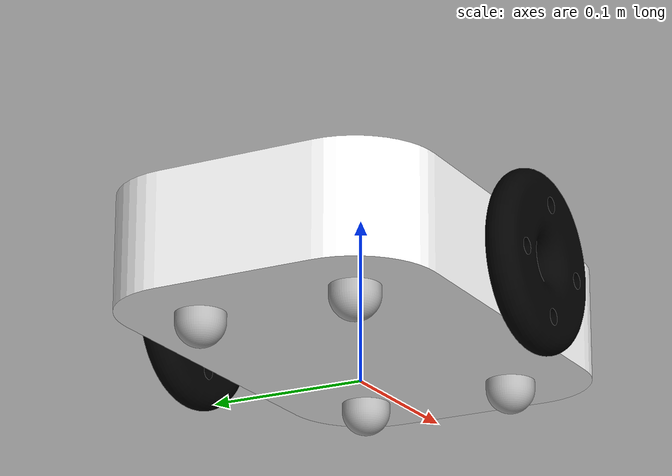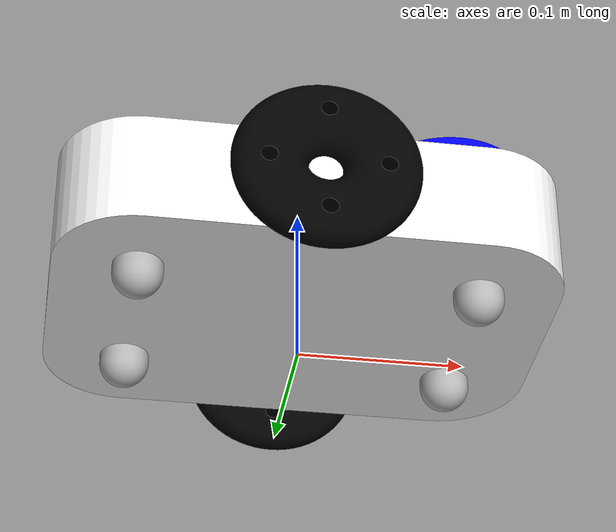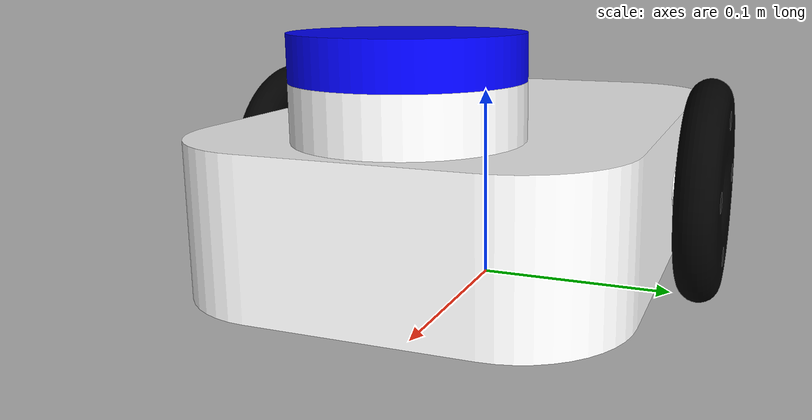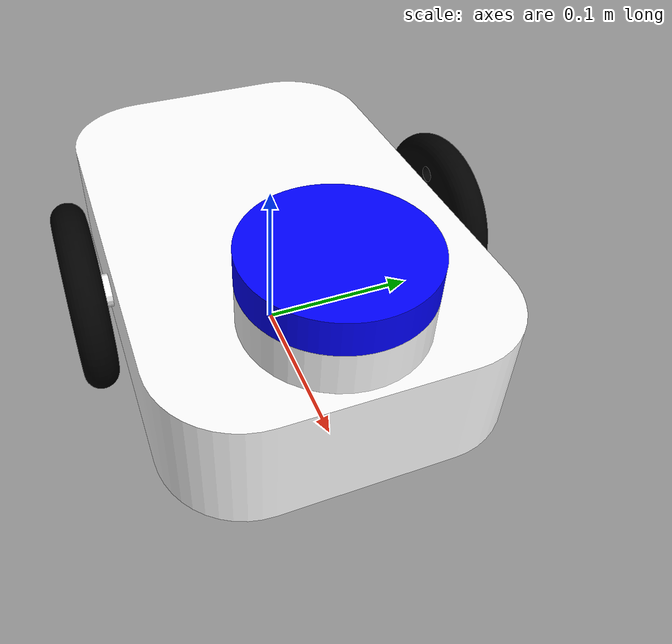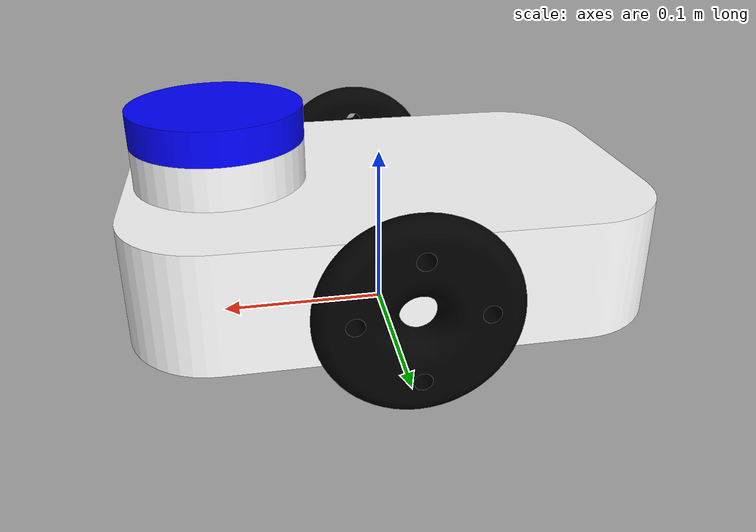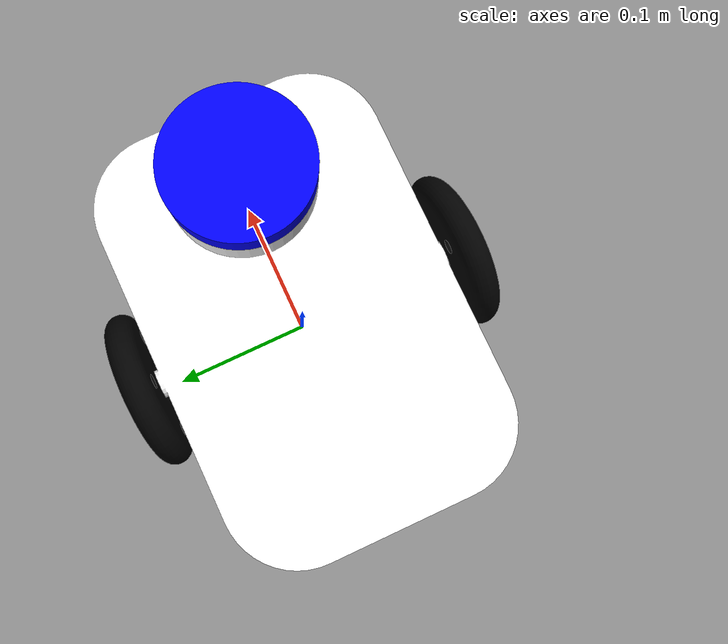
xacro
<?xml version="1.0" ?>
<robot name="wmr" xmlns:xacro="http://www.ros.org/wiki/xacro">

<xacro:include filename="$(find wmr_description)/urdf/materials.xacro" />
<xacro:include filename="$(find wmr_description)/urdf/wmr.trans" />
<xacro:include filename="$(find wmr_description)/gazebo/wmr_detailed_material.gazebo" />
<xacro:include filename="$(find wmr_description)/gazebo/wmr_detailed_physics.gazebo" />
<xacro:include filename="$(find wmr_description)/gazebo/wmr_detailed_plugins.gazebo" />

<link name="base_link">
  <inertial>
    <origin xyz="0.004386500845627422 -3.4220383966176395e-17 0.057193250424025434" rpy="0 0 0"/>
    <mass value="1.0518647915777475"/>
    <inertia ixx="0.017915" iyy="0.038599" izz="0.051557" ixy="-0.0" iyz="-0.0" ixz="-0.001004"/>
  </inertial>
  <visual>
    <origin xyz="0 0 0" rpy="0 0 0"/>
    <geometry>
      <mesh filename="package://wmr_description/meshes/base_link.stl" scale="0.001 0.001 0.001"/>
    </geometry>
    <material name="white"/>
  </visual>
  <collision>
    <origin xyz="0 0 0" rpy="0 0 0"/>
    <geometry>
      <mesh filename="package://wmr_description/meshes/base_link.stl" scale="0.001 0.001 0.001"/>
    </geometry>
  </collision>
</link>

<link name="Lidar_1">
  <inertial>
    <origin xyz="-1.3877787807814457e-17 -1.447505775030507e-17 0.009999999999999995" rpy="0 0 0"/>
    <mass value="0.42411500823462206"/>
    <inertia ixx="0.000279" iyy="0.000279" izz="0.00053" ixy="-0.0" iyz="-0.0" ixz="0.0"/>
  </inertial>
  <visual>
    <origin xyz="-0.095 -0.0 -0.115" rpy="0 0 0"/>
    <geometry>
      <mesh filename="package://wmr_description/meshes/Lidar_1.stl" scale="0.001 0.001 0.001"/>
    </geometry>
    <material name="blue"/>
  </visual>
  <collision>
    <origin xyz="-0.095 -0.0 -0.115" rpy="0 0 0"/>
    <geometry>
      <mesh filename="package://wmr_description/meshes/Lidar_1.stl" scale="0.001 0.001 0.001"/>
    </geometry>
  </collision>
</link>

<link name="caster_left_back_1">
  <inertial>
    <origin xyz="1.5265566588595902e-16 -8.326672684688674e-17 -0.007916666666666667" rpy="0 0 0"/>
    <mass value="0.028627763055837"/>
    <inertia ixx="2e-06" iyy="2e-06" izz="3e-06" ixy="-0.0" iyz="0.0" ixz="-0.0"/>
  </inertial>
  <visual>
    <origin xyz="0.1 -0.05 -0.02" rpy="0 0 0"/>
    <geometry>
      <mesh filename="package://wmr_description/meshes/caster_left_back_1.stl" scale="0.001 0.001 0.001"/>
    </geometry>
    <material name="silver"/>
  </visual>
  <collision>
    <origin xyz="0.1 -0.05 -0.02" rpy="0 0 0"/>
    <geometry>
      <mesh filename="package://wmr_description/meshes/caster_left_back_1.stl" scale="0.001 0.001 0.001"/>
    </geometry>
  </collision>
</link>

<link name="caster_right_back_1">
  <inertial>
    <origin xyz="4.163336342344337e-17 -4.163336342344337e-17 -0.007916666666666667" rpy="0 0 0"/>
    <mass value="0.028627763055836974"/>
    <inertia ixx="2e-06" iyy="2e-06" izz="3e-06" ixy="0.0" iyz="0.0" ixz="0.0"/>
  </inertial>
  <visual>
    <origin xyz="0.1 0.05 -0.02" rpy="0 0 0"/>
    <geometry>
      <mesh filename="package://wmr_description/meshes/caster_right_back_1.stl" scale="0.001 0.001 0.001"/>
    </geometry>
    <material name="silver"/>
  </visual>
  <collision>
    <origin xyz="0.1 0.05 -0.02" rpy="0 0 0"/>
    <geometry>
      <mesh filename="package://wmr_description/meshes/caster_right_back_1.stl" scale="0.001 0.001 0.001"/>
    </geometry>
  </collision>
</link>

<link name="caster_right_front_1">
  <inertial>
    <origin xyz="-9.71445146547012e-17 1.5959455978986625e-16 -0.007916666666666667" rpy="0 0 0"/>
    <mass value="0.028627763055837"/>
    <inertia ixx="2e-06" iyy="2e-06" izz="3e-06" ixy="-0.0" iyz="-0.0" ixz="-0.0"/>
  </inertial>
  <visual>
    <origin xyz="-0.1 0.05 -0.02" rpy="0 0 0"/>
    <geometry>
      <mesh filename="package://wmr_description/meshes/caster_right_front_1.stl" scale="0.001 0.001 0.001"/>
    </geometry>
    <material name="silver"/>
  </visual>
  <collision>
    <origin xyz="-0.1 0.05 -0.02" rpy="0 0 0"/>
    <geometry>
      <mesh filename="package://wmr_description/meshes/caster_right_front_1.stl" scale="0.001 0.001 0.001"/>
    </geometry>
  </collision>
</link>

<link name="caster_left_front_1">
  <inertial>
    <origin xyz="1.3877787807814457e-16 8.326672684688674e-17 -0.007916666666666667" rpy="0 0 0"/>
    <mass value="0.028627763055836974"/>
    <inertia ixx="2e-06" iyy="2e-06" izz="3e-06" ixy="0.0" iyz="0.0" ixz="0.0"/>
  </inertial>
  <visual>
    <origin xyz="-0.1 -0.05 -0.02" rpy="0 0 0"/>
    <geometry>
      <mesh filename="package://wmr_description/meshes/caster_left_front_1.stl" scale="0.001 0.001 0.001"/>
    </geometry>
    <material name="silver"/>
  </visual>
  <collision>
    <origin xyz="-0.1 -0.05 -0.02" rpy="0 0 0"/>
    <geometry>
      <mesh filename="package://wmr_description/meshes/caster_left_front_1.stl" scale="0.001 0.001 0.001"/>
    </geometry>
  </collision>
</link>

<link name="left_wheel_1">
  <inertial>
    <origin xyz="2.39278252948906e-06 0.004895652123634409 -7.168491681554257e-05" rpy="0 0 0"/>
    <mass value="0.14679988597311447"/>
    <inertia ixx="0.000115" iyy="0.000222" izz="0.000115" ixy="-0.0" iyz="0.0" ixz="0.0"/>
  </inertial>
  <visual>
    <origin xyz="-0.0 -0.11 -0.055" rpy="0 0 0"/>
    <geometry>
      <mesh filename="package://wmr_description/meshes/left_wheel_1.stl" scale="0.001 0.001 0.001"/>
    </geometry>
    <material name="black"/>
  </visual>
  <collision>
    <origin xyz="-0.0 -0.11 -0.055" rpy="0 0 0"/>
    <geometry>
      <mesh filename="package://wmr_description/meshes/left_wheel_1.stl" scale="0.001 0.001 0.001"/>
    </geometry>
  </collision>
</link>

<link name="right_wheel_1">
  <inertial>
    <origin xyz="-2.392782529448616e-06 -0.004895652123634436 7.168655594325807e-05" rpy="0 0 0"/>
    <mass value="0.14679988597311452"/>
    <inertia ixx="0.000115" iyy="0.000222" izz="0.000115" ixy="-0.0" iyz="0.0" ixz="0.0"/>
  </inertial>
  <visual>
    <origin xyz="-0.0 0.11 -0.055" rpy="0 0 0"/>
    <geometry>
      <mesh filename="package://wmr_description/meshes/right_wheel_1.stl" scale="0.001 0.001 0.001"/>
    </geometry>
    <material name="black"/>
  </visual>
  <collision>
    <origin xyz="-0.0 0.11 -0.055" rpy="0 0 0"/>
    <geometry>
      <mesh filename="package://wmr_description/meshes/right_wheel_1.stl" scale="0.001 0.001 0.001"/>
    </geometry>
  </collision>
</link>

<joint name="lidar_rigid" type="fixed">
  <origin xyz="0.095 0.0 0.115" rpy="0 0 0"/>
  <parent link="base_link"/>
  <child link="Lidar_1"/>
</joint>

<joint name="caster_left_back_rigid" type="fixed">
  <origin xyz="-0.1 0.05 0.02" rpy="0 0 0"/>
  <parent link="base_link"/>
  <child link="caster_left_back_1"/>
</joint>

<joint name="caster_right_back_rigid" type="fixed">
  <origin xyz="-0.1 -0.05 0.02" rpy="0 0 0"/>
  <parent link="base_link"/>
  <child link="caster_right_back_1"/>
</joint>

<joint name="caster_right_front_rigid" type="fixed">
  <origin xyz="0.1 -0.05 0.02" rpy="0 0 0"/>
  <parent link="base_link"/>
  <child link="caster_right_front_1"/>
</joint>

<joint name="caster_left_front_rigid" type="fixed">
  <origin xyz="0.1 0.05 0.02" rpy="0 0 0"/>
  <parent link="base_link"/>
  <child link="caster_left_front_1"/>
</joint>

<joint name="left_revolute" type="continuous">
  <origin xyz="0.0 0.11 0.055" rpy="0 0 0"/>
  <parent link="base_link"/>
  <child link="left_wheel_1"/>
  <axis xyz="0.0 1.0 0.0"/>
</joint>

<joint name="right_revolute" type="continuous">
  <origin xyz="0.0 -0.11 0.055" rpy="0 0 0"/>
  <parent link="base_link"/>
  <child link="right_wheel_1"/>
  <axis xyz="0.0 1.0 0.0"/>
</joint>

</robot>

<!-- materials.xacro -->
<robot name="wmr" xmlns:xacro="http://www.ros.org/wiki/xacro" >

<material name="silver">
  <color rgba="0.700 0.700 0.700 1.000"/>
</material>

<material name="white">
  <color rgba="1.000 1.000 1.000 1.000"/>
</material>

<material name="black">
  <color rgba="0.000 0.000 0.000 1.000"/>
</material>

<material name="blue">
  <color rgba="0.000 0.000 1.000 1.000"/>
</material>
</robot>

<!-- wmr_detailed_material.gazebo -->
<robot name="wmr" xmlns:xacro="http://www.ros.org/wiki/xacro" >

<xacro:property name="body_color" value="Gazebo/WhiteGlow" />
<xacro:property name="wheel_color" value="Gazebo/Black" />
<xacro:property name="caster_color" value="Gazebo/Silver" />
<xacro:property name="Lidar_color" value="Gazebo/BlueGlow" />

<gazebo reference="base_link">
  <material>${body_color}</material>
</gazebo>

<gazebo reference="Lidar_1">
  <material>${Lidar_color}</material>
</gazebo>

<gazebo reference="caster_left_back_1">
  <material>${caster_color}</material>
</gazebo>

<gazebo reference="caster_right_back_1">
  <material>${caster_color}</material>
</gazebo>

<gazebo reference="caster_right_front_1">
  <material>${caster_color}</material>
</gazebo>

<gazebo reference="caster_left_front_1">
  <material>${caster_color}</material>
</gazebo>

<gazebo reference="left_wheel_1">
  <material>${wheel_color}</material>
</gazebo>

<gazebo reference="right_wheel_1">
  <material>${wheel_color}</material>
</gazebo>

</robot>
